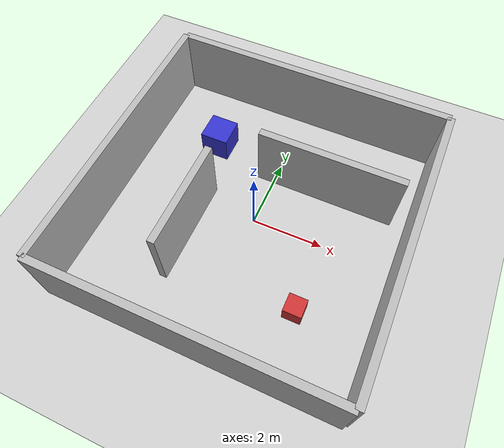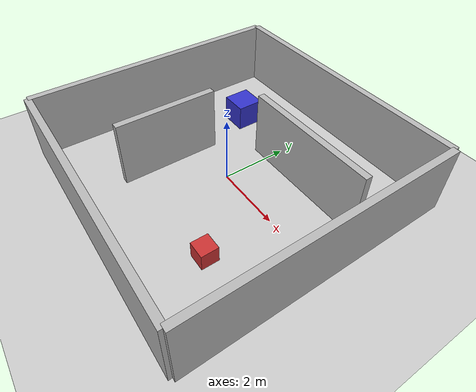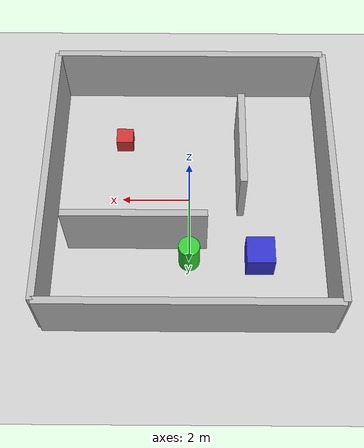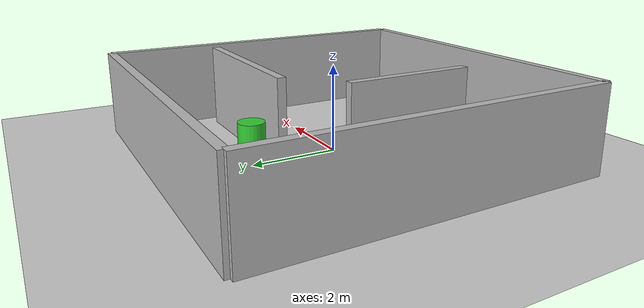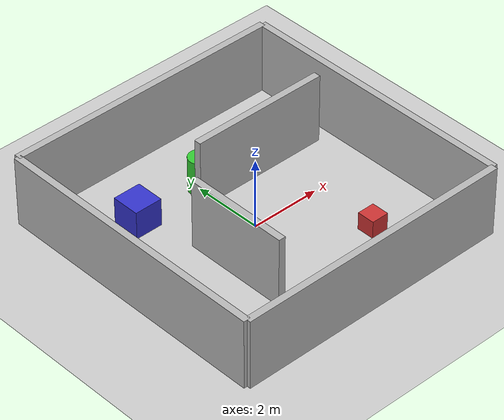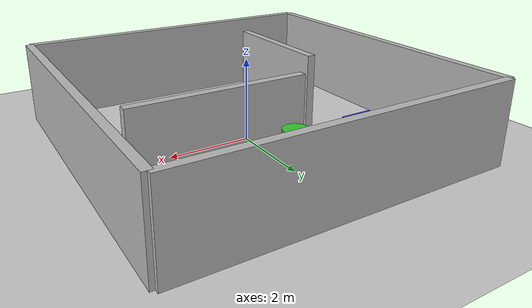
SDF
<?xml version="1.0" ?>
<sdf version="1.6">

<world name="house">

  <!-- الشمس -->
  <include>
    <uri>model://sun</uri>
  </include>

  <!-- الأرض -->
  <include>
    <uri>model://ground_plane</uri>
  </include>

  <!-- الجدران الخارجية -->

  <!-- يمين -->
  <model name="wall_right">
    <static>true</static>
    <pose>4 0 1 0 0 0</pose>

    <link name="link">
      <collision name="collision">
        <geometry>
          <box><size>0.2 8 2</size></box>
        </geometry>
      </collision>

      <visual name="visual">
        <geometry>
          <box><size>0.2 8 2</size></box>
        </geometry>
      </visual>
    </link>
  </model>

  <!-- يسار -->
  <model name="wall_left">
    <static>true</static>
    <pose>-4 0 1 0 0 0</pose>

    <link name="link">
      <collision name="collision">
        <geometry>
          <box><size>0.2 8 2</size></box>
        </geometry>
      </collision>

      <visual name="visual">
        <geometry>
          <box><size>0.2 8 2</size></box>
        </geometry>
      </visual>
    </link>
  </model>

  <!-- أعلى -->
  <model name="wall_top">
    <static>true</static>
    <pose>0 4 1 0 0 1.5708</pose>

    <link name="link">
      <collision name="collision">
        <geometry>
          <box><size>0.2 8 2</size></box>
        </geometry>
      </collision>

      <visual name="visual">
        <geometry>
          <box><size>0.2 8 2</size></box>
        </geometry>
      </visual>
    </link>
  </model>

  <!-- أسفل -->
  <model name="wall_bottom">
    <static>true</static>
    <pose>0 -4 1 0 0 1.5708</pose>

    <link name="link">
      <collision name="collision">
        <geometry>
          <box><size>0.2 8 2</size></box>
        </geometry>
      </collision>

      <visual name="visual">
        <geometry>
          <box><size>0.2 8 2</size></box>
        </geometry>
      </visual>
    </link>
  </model>

  <!-- جدران داخلية -->

  <model name="inner_wall1">
    <static>true</static>
    <pose>1.5 1.5 1 0 0 1.5708</pose>

    <link name="link">
      <collision name="collision">
        <geometry>
          <box><size>0.2 4 2</size></box>
        </geometry>
      </collision>

      <visual name="visual">
        <geometry>
          <box><size>0.2 4 2</size></box>
        </geometry>
      </visual>
    </link>
  </model>

  <model name="inner_wall2">
    <static>true</static>
    <pose>-1.5 -1 1 0 0 0</pose>

    <link name="link">
      <collision name="collision">
        <geometry>
          <box><size>0.2 3 2</size></box>
        </geometry>
      </collision>

      <visual name="visual">
        <geometry>
          <box><size>0.2 3 2</size></box>
        </geometry>
      </visual>
    </link>
  </model>

  <!-- صناديق -->

  <model name="box1">
    <static>true</static>
    <pose>2 -2 0.25 0 0 0</pose>

    <link name="link">
      <collision name="collision">
        <geometry>
          <box><size>0.5 0.5 0.5</size></box>
        </geometry>
      </collision>

      <visual name="visual">
        <geometry>
          <box><size>0.5 0.5 0.5</size></box>
        </geometry>

        <material>
          <ambient>0.8 0.2 0.2 1</ambient>
          <diffuse>0.8 0.2 0.2 1</diffuse>
        </material>

      </visual>
    </link>
  </model>

  <model name="box2">
    <static>true</static>
    <pose>-2 2 0.4 0 0 0</pose>

    <link name="link">
      <collision name="collision">
        <geometry>
          <box><size>0.8 0.8 0.8</size></box>
        </geometry>
      </collision>

      <visual name="visual">
        <geometry>
          <box><size>0.8 0.8 0.8</size></box>
        </geometry>

        <material>
          <ambient>0.2 0.2 0.8 1</ambient>
          <diffuse>0.2 0.2 0.8 1</diffuse>
        </material>

      </visual>
    </link>
  </model>

  <!-- أسطوانة -->

  <model name="cylinder">

    <static>true</static>

    <pose>0 2 0.5 0 0 0</pose>

    <link name="link">

      <collision name="collision">
        <geometry>
          <cylinder>
            <radius>0.3</radius>
            <length>1</length>
          </cylinder>
        </geometry>
      </collision>

      <visual name="visual">
        <geometry>
          <cylinder>
            <radius>0.3</radius>
            <length>1</length>
          </cylinder>
        </geometry>

        <material>
          <ambient>0.2 0.8 0.2 1</ambient>
          <diffuse>0.2 0.8 0.2 1</diffuse>
        </material>

      </visual>

    </link>

  </model>

</world>

</sdf>
